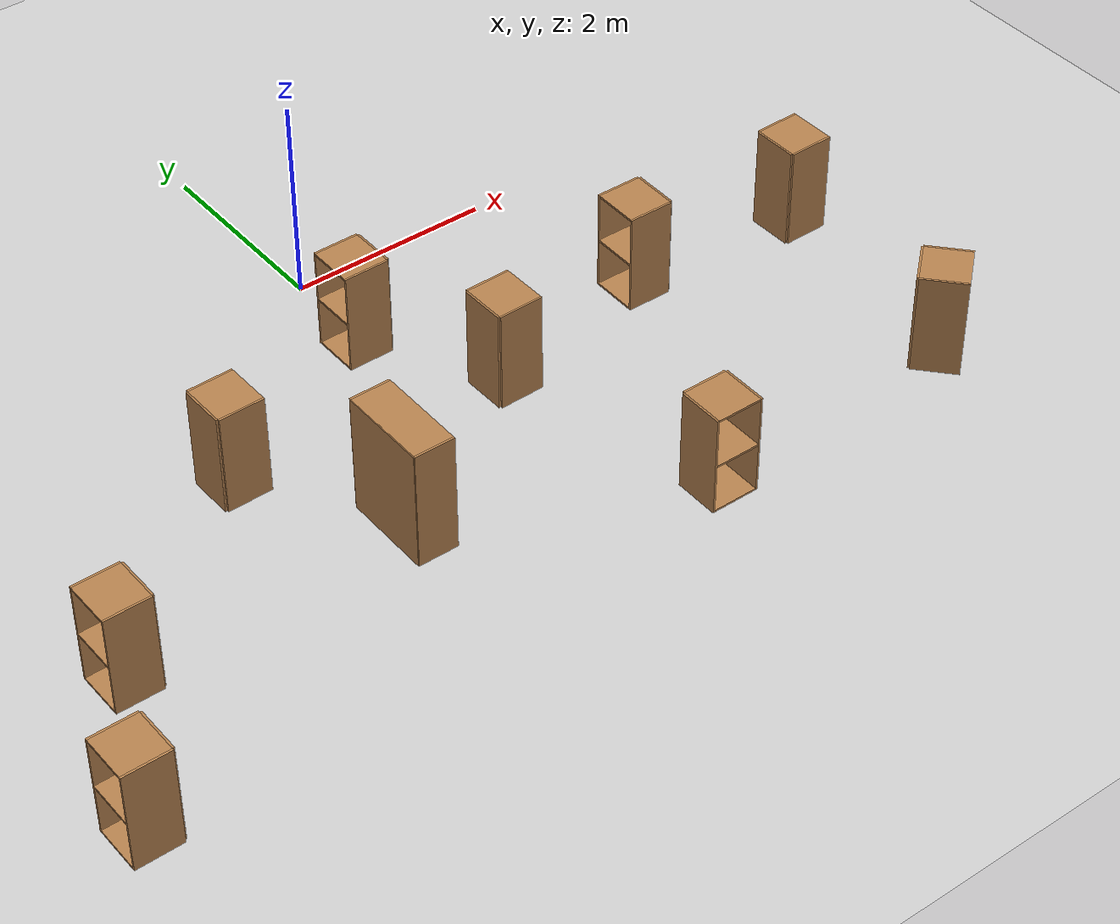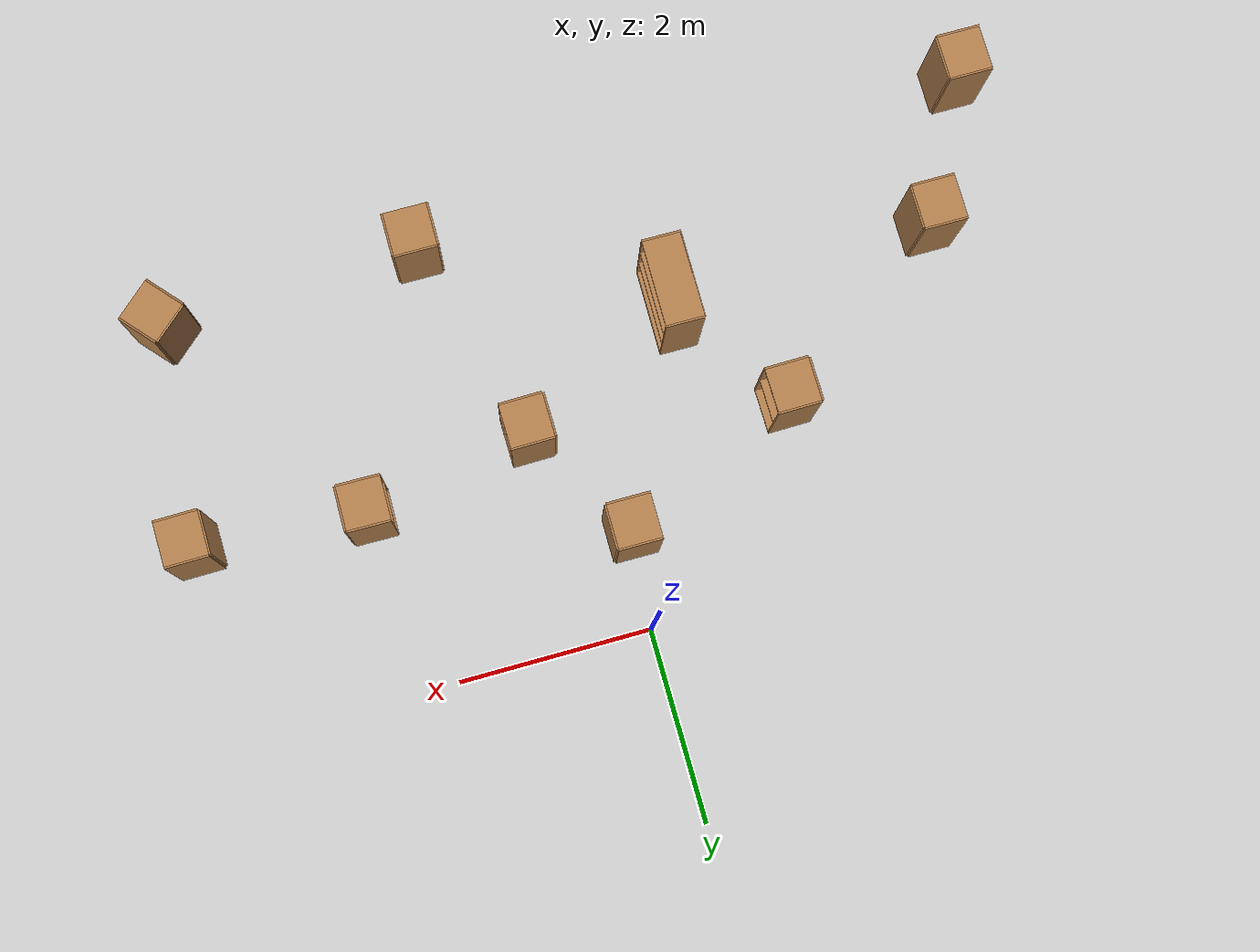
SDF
<sdf version="1.6">
 <world name="default">
  <model name="ground_plane">
   <static>1</static>
   <link name="link">
    <collision name="collision">
     <geometry><plane><normal>0 0 1</normal><size>100 100</size></plane></geometry>
     <surface><friction><ode><mu>100</mu><mu2>50</mu2></ode></friction></surface>
    </collision>
    <visual name="visual">
     <cast_shadows>0</cast_shadows>
     <geometry><plane><normal>0 0 1</normal><size>100 100</size></plane></geometry>
     <material>
      <script><uri>file://media/materials/scripts/gazebo.material</uri><name>Gazebo/Grey</name></script>
     </material>
    </visual>
   </link>
  </model>
  <model name="cabinet">
   <static>1</static>
   <link name="cabinet_bottom_plate">
    <inertial>
     <pose>0 0 -1 0 -0 0</pose>
     <inertia><ixx>2.05</ixx><ixy>0</ixy><ixz>0</ixz><iyy>2.05</iyy><iyz>0</iyz><izz>2.05</izz></inertia>
     <mass>25</mass>
    </inertial>
    <collision name="cabinet_bottom_plate_geom">
     <pose>0 0 0.01 0 -0 0</pose>
     <geometry><box><size>0.45 0.45 0.02</size></box></geometry>
    </collision>
    <visual name="cabinet_bottom_plate_geom_visual">
     <pose>0 0 0.01 0 -0 0</pose>
     <geometry><box><size>0.45 0.45 0.02</size></box></geometry>
     <material>
      <script><uri>file://media/materials/scripts/gazebo.material</uri><name>Gazebo/Wood</name></script>
     </material>
    </visual>
    <collision name="cabinet_bottom_plate_geom_cabinet_back_plate">
     <pose>0.235 0 0.51 0 -0 0</pose>
     <geometry><box><size>0.02 0.45 1.02</size></box></geometry>
    </collision>
    <visual name="cabinet_bottom_plate_geom_cabinet_back_plate_visual">
     <pose>0.235 0 0.51 0 -0 0</pose>
     <geometry><box><size>0.02 0.45 1.02</size></box></geometry>
     <material>
      <script><uri>file://media/materials/scripts/gazebo.material</uri><name>Gazebo/Wood</name></script>
     </material>
    </visual>
    <collision name="cabinet_bottom_plate_geom_cabinet_left_plate">
     <pose>0 0.235 0.51 0 -0 0</pose>
     <geometry><box><size>0.45 0.02 1.02</size></box></geometry>
    </collision>
    <visual name="cabinet_bottom_plate_geom_cabinet_left_plate_visual">
     <pose>0 0.235 0.51 0 -0 0</pose>
     <geometry><box><size>0.45 0.02 1.02</size></box></geometry>
     <material>
      <script><uri>file://media/materials/scripts/gazebo.material</uri><name>Gazebo/Wood</name></script>
     </material>
    </visual>
    <collision name="cabinet_bottom_plate_geom_cabinet_middle_plate">
     <pose>0 0 0.51 0 -0 0</pose>
     <geometry><box><size>0.45 0.45 0.02</size></box></geometry>
    </collision>
    <visual name="cabinet_bottom_plate_geom_cabinet_middle_plate_visual">
     <pose>0 0 0.51 0 -0 0</pose>
     <geometry><box><size>0.45 0.45 0.02</size></box></geometry>
     <material>
      <script><uri>file://media/materials/scripts/gazebo.material</uri><name>Gazebo/Wood</name></script>
     </material>
    </visual>
    <collision name="cabinet_bottom_plate_geom_cabinet_right_plate">
     <pose>0 -0.235 0.51 0 -0 0</pose>
     <geometry><box><size>0.45 0.02 1.02</size></box></geometry>
    </collision>
    <visual name="cabinet_bottom_plate_geom_cabinet_right_plate_visual">
     <pose>0 -0.235 0.51 0 -0 0</pose>
     <geometry><box><size>0.45 0.02 1.02</size></box></geometry>
     <material>
      <script><uri>file://media/materials/scripts/gazebo.material</uri><name>Gazebo/Wood</name></script>
     </material>
    </visual>
    <collision name="cabinet_bottom_plate_geom_cabinet_top_plate">
     <pose>0 0 1.01 0 -0 0</pose>
     <geometry><box><size>0.45 0.45 0.02</size></box></geometry>
    </collision>
    <visual name="cabinet_bottom_plate_geom_cabinet_top_plate_visual">
     <pose>0 0 1.01 0 -0 0</pose>
     <geometry><box><size>0.45 0.45 0.02</size></box></geometry>
     <material>
      <script><uri>file://media/materials/scripts/gazebo.material</uri><name>Gazebo/Wood</name></script>
     </material>
    </visual>
   </link>
   <pose>-4.59525 -4.71212 0 0 -0 0</pose>
  </model>
  <model name="bookshelf">
   <static>1</static>
   <link name="link">
    <inertial><mass>1</mass></inertial>
    <collision name="back">
     <pose>0 0.005 0.6 0 -0 0</pose>
     <geometry><box><size>0.9 0.01 1.2</size></box></geometry>
    </collision>
    <visual name="visual1">
     <pose>0 0.005 0.6 0 -0 0</pose>
     <geometry><box><size>0.9 0.01 1.2</size></box></geometry>
     <material>
      <script><uri>file://media/materials/scripts/gazebo.material</uri><name>Gazebo/Wood</name></script>
     </material>
    </visual>
    <collision name="left_side">
     <pose>0.45 -0.195 0.6 0 -0 0</pose>
     <geometry><box><size>0.02 0.4 1.2</size></box></geometry>
    </collision>
    <visual name="visual2">
     <pose>0.45 -0.195 0.6 0 -0 0</pose>
     <geometry><box><size>0.02 0.4 1.2</size></box></geometry>
     <material>
      <script><uri>file://media/materials/scripts/gazebo.material</uri><name>Gazebo/Wood</name></script>
     </material>
    </visual>
    <collision name="right_side">
     <pose>-0.45 -0.195 0.6 0 -0 0</pose>
     <geometry><box><size>0.02 0.4 1.2</size></box></geometry>
    </collision>
    <visual name="visual3">
     <pose>-0.45 -0.195 0.6 0 -0 0</pose>
     <geometry><box><size>0.02 0.4 1.2</size></box></geometry>
     <material>
      <script><uri>file://media/materials/scripts/gazebo.material</uri><name>Gazebo/Wood</name></script>
     </material>
    </visual>
    <collision name="bottom">
     <pose>0 -0.195 0.03 0 -0 0</pose>
     <geometry><box><size>0.88 0.4 0.06</size></box></geometry>
    </collision>
    <visual name="visual4">
     <pose>0 -0.195 0.03 0 -0 0</pose>
     <geometry><box><size>0.88 0.4 0.06</size></box></geometry>
     <material>
      <script><uri>file://media/materials/scripts/gazebo.material</uri><name>Gazebo/Wood</name></script>
     </material>
    </visual>
    <collision name="top">
     <pose>0 -0.195 1.19 0 -0 0</pose>
     <geometry><box><size>0.88 0.4 0.02</size></box></geometry>
    </collision>
    <visual name="visual5">
     <pose>0 -0.195 1.19 0 -0 0</pose>
     <geometry><box><size>0.88 0.4 0.02</size></box></geometry>
     <material>
      <script><uri>file://media/materials/scripts/gazebo.material</uri><name>Gazebo/Wood</name></script>
     </material>
    </visual>
    <collision name="low_shelf">
     <pose>0 -0.195 0.43 0 -0 0</pose>
     <geometry><box><size>0.88 0.4 0.02</size></box></geometry>
    </collision>
    <visual name="visual6">
     <pose>0 -0.195 0.43 0 -0 0</pose>
     <geometry><box><size>0.88 0.4 0.02</size></box></geometry>
     <material>
      <script><uri>file://media/materials/scripts/gazebo.material</uri><name>Gazebo/Wood</name></script>
     </material>
    </visual>
    <collision name="high_shelf">
     <pose>0 -0.195 0.8 0 -0 0</pose>
     <geometry><box><size>0.88 0.4 0.02</size></box></geometry>
    </collision>
    <visual name="visual7">
     <pose>0 -0.195 0.8 0 -0 0</pose>
     <geometry><box><size>0.88 0.4 0.02</size></box></geometry>
     <material>
      <script><uri>file://media/materials/scripts/gazebo.material</uri><name>Gazebo/Wood</name></script>
     </material>
    </visual>
   </link>
   <pose>-1.26733 -3.17587 0 0 -0 1.56537</pose>
  </model>
  <model name="cabinet_0">
   <static>1</static>
   <link name="cabinet_bottom_plate">
    <inertial>
     <pose>0 0 -1 0 -0 0</pose>
     <inertia><ixx>2.05</ixx><ixy>0</ixy><ixz>0</ixz><iyy>2.05</iyy><iyz>0</iyz><izz>2.05</izz></inertia>
     <mass>25</mass>
    </inertial>
    <collision name="cabinet_bottom_plate_geom">
     <pose>0 0 0.01 0 -0 0</pose>
     <geometry><box><size>0.45 0.45 0.02</size></box></geometry>
    </collision>
    <visual name="cabinet_bottom_plate_geom_visual">
     <pose>0 0 0.01 0 -0 0</pose>
     <geometry><box><size>0.45 0.45 0.02</size></box></geometry>
     <material>
      <script><uri>file://media/materials/scripts/gazebo.material</uri><name>Gazebo/Wood</name></script>
     </material>
    </visual>
    <collision name="cabinet_bottom_plate_geom_cabinet_back_plate">
     <pose>0.235 0 0.51 0 -0 0</pose>
     <geometry><box><size>0.02 0.45 1.02</size></box></geometry>
    </collision>
    <visual name="cabinet_bottom_plate_geom_cabinet_back_plate_visual">
     <pose>0.235 0 0.51 0 -0 0</pose>
     <geometry><box><size>0.02 0.45 1.02</size></box></geometry>
     <material>
      <script><uri>file://media/materials/scripts/gazebo.material</uri><name>Gazebo/Wood</name></script>
     </material>
    </visual>
    <collision name="cabinet_bottom_plate_geom_cabinet_left_plate">
     <pose>0 0.235 0.51 0 -0 0</pose>
     <geometry><box><size>0.45 0.02 1.02</size></box></geometry>
    </collision>
    <visual name="cabinet_bottom_plate_geom_cabinet_left_plate_visual">
     <pose>0 0.235 0.51 0 -0 0</pose>
     <geometry><box><size>0.45 0.02 1.02</size></box></geometry>
     <material>
      <script><uri>file://media/materials/scripts/gazebo.material</uri><name>Gazebo/Wood</name></script>
     </material>
    </visual>
    <collision name="cabinet_bottom_plate_geom_cabinet_middle_plate">
     <pose>0 0 0.51 0 -0 0</pose>
     <geometry><box><size>0.45 0.45 0.02</size></box></geometry>
    </collision>
    <visual name="cabinet_bottom_plate_geom_cabinet_middle_plate_visual">
     <pose>0 0 0.51 0 -0 0</pose>
     <geometry><box><size>0.45 0.45 0.02</size></box></geometry>
     <material>
      <script><uri>file://media/materials/scripts/gazebo.material</uri><name>Gazebo/Wood</name></script>
     </material>
    </visual>
    <collision name="cabinet_bottom_plate_geom_cabinet_right_plate">
     <pose>0 -0.235 0.51 0 -0 0</pose>
     <geometry><box><size>0.45 0.02 1.02</size></box></geometry>
    </collision>
    <visual name="cabinet_bottom_plate_geom_cabinet_right_plate_visual">
     <pose>0 -0.235 0.51 0 -0 0</pose>
     <geometry><box><size>0.45 0.02 1.02</size></box></geometry>
     <material>
      <script><uri>file://media/materials/scripts/gazebo.material</uri><name>Gazebo/Wood</name></script>
     </material>
    </visual>
    <collision name="cabinet_bottom_plate_geom_cabinet_top_plate">
     <pose>0 0 1.01 0 -0 0</pose>
     <geometry><box><size>0.45 0.45 0.02</size></box></geometry>
    </collision>
    <visual name="cabinet_bottom_plate_geom_cabinet_top_plate_visual">
     <pose>0 0 1.01 0 -0 0</pose>
     <geometry><box><size>0.45 0.45 0.02</size></box></geometry>
     <material>
      <script><uri>file://media/materials/scripts/gazebo.material</uri><name>Gazebo/Wood</name></script>
     </material>
    </visual>
   </link>
   <pose>-3.88363 -3.28029 0 0 -0 0</pose>
  </model>
  <model name="cabinet_0_clone">
   <static>1</static>
   <link name="cabinet_bottom_plate">
    <inertial>
     <pose>0 0 -1 0 -0 0</pose>
     <inertia><ixx>2.05</ixx><ixy>0</ixy><ixz>0</ixz><iyy>2.05</iyy><iyz>0</iyz><izz>2.05</izz></inertia>
     <mass>25</mass>
    </inertial>
    <collision name="cabinet_bottom_plate_geom">
     <pose>0 0 0.01 0 -0 0</pose>
     <geometry><box><size>0.45 0.45 0.02</size></box></geometry>
    </collision>
    <visual name="cabinet_bottom_plate_geom_visual">
     <pose>0 0 0.01 0 -0 0</pose>
     <geometry><box><size>0.45 0.45 0.02</size></box></geometry>
     <material>
      <script><uri>file://media/materials/scripts/gazebo.material</uri><name>Gazebo/Wood</name></script>
     </material>
    </visual>
    <collision name="cabinet_bottom_plate_geom_cabinet_back_plate">
     <pose>0.235 0 0.51 0 -0 0</pose>
     <geometry><box><size>0.02 0.45 1.02</size></box></geometry>
    </collision>
    <visual name="cabinet_bottom_plate_geom_cabinet_back_plate_visual">
     <pose>0.235 0 0.51 0 -0 0</pose>
     <geometry><box><size>0.02 0.45 1.02</size></box></geometry>
     <material>
      <script><uri>file://media/materials/scripts/gazebo.material</uri><name>Gazebo/Wood</name></script>
     </material>
    </visual>
    <collision name="cabinet_bottom_plate_geom_cabinet_left_plate">
     <pose>0 0.235 0.51 0 -0 0</pose>
     <geometry><box><size>0.45 0.02 1.02</size></box></geometry>
    </collision>
    <visual name="cabinet_bottom_plate_geom_cabinet_left_plate_visual">
     <pose>0 0.235 0.51 0 -0 0</pose>
     <geometry><box><size>0.45 0.02 1.02</size></box></geometry>
     <material>
      <script><uri>file://media/materials/scripts/gazebo.material</uri><name>Gazebo/Wood</name></script>
     </material>
    </visual>
    <collision name="cabinet_bottom_plate_geom_cabinet_middle_plate">
     <pose>0 0 0.51 0 -0 0</pose>
     <geometry><box><size>0.45 0.45 0.02</size></box></geometry>
    </collision>
    <visual name="cabinet_bottom_plate_geom_cabinet_middle_plate_visual">
     <pose>0 0 0.51 0 -0 0</pose>
     <geometry><box><size>0.45 0.45 0.02</size></box></geometry>
     <material>
      <script><uri>file://media/materials/scripts/gazebo.material</uri><name>Gazebo/Wood</name></script>
     </material>
    </visual>
    <collision name="cabinet_bottom_plate_geom_cabinet_right_plate">
     <pose>0 -0.235 0.51 0 -0 0</pose>
     <geometry><box><size>0.45 0.02 1.02</size></box></geometry>
    </collision>
    <visual name="cabinet_bottom_plate_geom_cabinet_right_plate_visual">
     <pose>0 -0.235 0.51 0 -0 0</pose>
     <geometry><box><size>0.45 0.02 1.02</size></box></geometry>
     <material>
      <script><uri>file://media/materials/scripts/gazebo.material</uri><name>Gazebo/Wood</name></script>
     </material>
    </visual>
    <collision name="cabinet_bottom_plate_geom_cabinet_top_plate">
     <pose>0 0 1.01 0 -0 0</pose>
     <geometry><box><size>0.45 0.45 0.02</size></box></geometry>
    </collision>
    <visual name="cabinet_bottom_plate_geom_cabinet_top_plate_visual">
     <pose>0 0 1.01 0 -0 0</pose>
     <geometry><box><size>0.45 0.45 0.02</size></box></geometry>
     <material>
      <script><uri>file://media/materials/scripts/gazebo.material</uri><name>Gazebo/Wood</name></script>
     </material>
    </visual>
   </link>
   <pose>-1.93662 -1.87082 0 0 0 -3.12805</pose>
  </model>
  <model name="cabinet_0_clone_clone_3">
   <static>1</static>
   <link name="cabinet_bottom_plate">
    <inertial>
     <pose>0 0 -1 0 -0 0</pose>
     <inertia><ixx>2.05</ixx><ixy>0</ixy><ixz>0</ixz><iyy>2.05</iyy><iyz>0</iyz><izz>2.05</izz></inertia>
     <mass>25</mass>
    </inertial>
    <collision name="cabinet_bottom_plate_geom">
     <pose>0 0 0.01 0 -0 0</pose>
     <geometry><box><size>0.45 0.45 0.02</size></box></geometry>
    </collision>
    <visual name="cabinet_bottom_plate_geom_visual">
     <pose>0 0 0.01 0 -0 0</pose>
     <geometry><box><size>0.45 0.45 0.02</size></box></geometry>
     <material>
      <script><uri>file://media/materials/scripts/gazebo.material</uri><name>Gazebo/Wood</name></script>
     </material>
    </visual>
    <collision name="cabinet_bottom_plate_geom_cabinet_back_plate">
     <pose>0.235 0 0.51 0 -0 0</pose>
     <geometry><box><size>0.02 0.45 1.02</size></box></geometry>
    </collision>
    <visual name="cabinet_bottom_plate_geom_cabinet_back_plate_visual">
     <pose>0.235 0 0.51 0 -0 0</pose>
     <geometry><box><size>0.02 0.45 1.02</size></box></geometry>
     <material>
      <script><uri>file://media/materials/scripts/gazebo.material</uri><name>Gazebo/Wood</name></script>
     </material>
    </visual>
    <collision name="cabinet_bottom_plate_geom_cabinet_left_plate">
     <pose>0 0.235 0.51 0 -0 0</pose>
     <geometry><box><size>0.45 0.02 1.02</size></box></geometry>
    </collision>
    <visual name="cabinet_bottom_plate_geom_cabinet_left_plate_visual">
     <pose>0 0.235 0.51 0 -0 0</pose>
     <geometry><box><size>0.45 0.02 1.02</size></box></geometry>
     <material>
      <script><uri>file://media/materials/scripts/gazebo.material</uri><name>Gazebo/Wood</name></script>
     </material>
    </visual>
    <collision name="cabinet_bottom_plate_geom_cabinet_middle_plate">
     <pose>0 0 0.51 0 -0 0</pose>
     <geometry><box><size>0.45 0.45 0.02</size></box></geometry>
    </collision>
    <visual name="cabinet_bottom_plate_geom_cabinet_middle_plate_visual">
     <pose>0 0 0.51 0 -0 0</pose>
     <geometry><box><size>0.45 0.45 0.02</size></box></geometry>
     <material>
      <script><uri>file://media/materials/scripts/gazebo.material</uri><name>Gazebo/Wood</name></script>
     </material>
    </visual>
    <collision name="cabinet_bottom_plate_geom_cabinet_right_plate">
     <pose>0 -0.235 0.51 0 -0 0</pose>
     <geometry><box><size>0.45 0.02 1.02</size></box></geometry>
    </collision>
    <visual name="cabinet_bottom_plate_geom_cabinet_right_plate_visual">
     <pose>0 -0.235 0.51 0 -0 0</pose>
     <geometry><box><size>0.45 0.02 1.02</size></box></geometry>
     <material>
      <script><uri>file://media/materials/scripts/gazebo.material</uri><name>Gazebo/Wood</name></script>
     </material>
    </visual>
    <collision name="cabinet_bottom_plate_geom_cabinet_top_plate">
     <pose>0 0 1.01 0 -0 0</pose>
     <geometry><box><size>0.45 0.45 0.02</size></box></geometry>
    </collision>
    <visual name="cabinet_bottom_plate_geom_cabinet_top_plate_visual">
     <pose>0 0 1.01 0 -0 0</pose>
     <geometry><box><size>0.45 0.45 0.02</size></box></geometry>
     <material>
      <script><uri>file://media/materials/scripts/gazebo.material</uri><name>Gazebo/Wood</name></script>
     </material>
    </visual>
   </link>
   <pose>-0.065749 -0.988475 0 0 0 -0.000499</pose>
  </model>
  <model name="cabinet_0_clone_clone_4">
   <static>1</static>
   <link name="cabinet_bottom_plate">
    <inertial>
     <pose>0 0 -1 0 -0 0</pose>
     <inertia><ixx>2.05</ixx><ixy>0</ixy><ixz>0</ixz><iyy>2.05</iyy><iyz>0</iyz><izz>2.05</izz></inertia>
     <mass>25</mass>
    </inertial>
    <collision name="cabinet_bottom_plate_geom">
     <pose>0 0 0.01 0 -0 0</pose>
     <geometry><box><size>0.45 0.45 0.02</size></box></geometry>
    </collision>
    <visual name="cabinet_bottom_plate_geom_visual">
     <pose>0 0 0.01 0 -0 0</pose>
     <geometry><box><size>0.45 0.45 0.02</size></box></geometry>
     <material>
      <script><uri>file://media/materials/scripts/gazebo.material</uri><name>Gazebo/Wood</name></script>
     </material>
    </visual>
    <collision name="cabinet_bottom_plate_geom_cabinet_back_plate">
     <pose>0.235 0 0.51 0 -0 0</pose>
     <geometry><box><size>0.02 0.45 1.02</size></box></geometry>
    </collision>
    <visual name="cabinet_bottom_plate_geom_cabinet_back_plate_visual">
     <pose>0.235 0 0.51 0 -0 0</pose>
     <geometry><box><size>0.02 0.45 1.02</size></box></geometry>
     <material>
      <script><uri>file://media/materials/scripts/gazebo.material</uri><name>Gazebo/Wood</name></script>
     </material>
    </visual>
    <collision name="cabinet_bottom_plate_geom_cabinet_left_plate">
     <pose>0 0.235 0.51 0 -0 0</pose>
     <geometry><box><size>0.45 0.02 1.02</size></box></geometry>
    </collision>
    <visual name="cabinet_bottom_plate_geom_cabinet_left_plate_visual">
     <pose>0 0.235 0.51 0 -0 0</pose>
     <geometry><box><size>0.45 0.02 1.02</size></box></geometry>
     <material>
      <script><uri>file://media/materials/scripts/gazebo.material</uri><name>Gazebo/Wood</name></script>
     </material>
    </visual>
    <collision name="cabinet_bottom_plate_geom_cabinet_middle_plate">
     <pose>0 0 0.51 0 -0 0</pose>
     <geometry><box><size>0.45 0.45 0.02</size></box></geometry>
    </collision>
    <visual name="cabinet_bottom_plate_geom_cabinet_middle_plate_visual">
     <pose>0 0 0.51 0 -0 0</pose>
     <geometry><box><size>0.45 0.45 0.02</size></box></geometry>
     <material>
      <script><uri>file://media/materials/scripts/gazebo.material</uri><name>Gazebo/Wood</name></script>
     </material>
    </visual>
    <collision name="cabinet_bottom_plate_geom_cabinet_right_plate">
     <pose>0 -0.235 0.51 0 -0 0</pose>
     <geometry><box><size>0.45 0.02 1.02</size></box></geometry>
    </collision>
    <visual name="cabinet_bottom_plate_geom_cabinet_right_plate_visual">
     <pose>0 -0.235 0.51 0 -0 0</pose>
     <geometry><box><size>0.45 0.02 1.02</size></box></geometry>
     <material>
      <script><uri>file://media/materials/scripts/gazebo.material</uri><name>Gazebo/Wood</name></script>
     </material>
    </visual>
    <collision name="cabinet_bottom_plate_geom_cabinet_top_plate">
     <pose>0 0 1.01 0 -0 0</pose>
     <geometry><box><size>0.45 0.45 0.02</size></box></geometry>
    </collision>
    <visual name="cabinet_bottom_plate_geom_cabinet_top_plate_visual">
     <pose>0 0 1.01 0 -0 0</pose>
     <geometry><box><size>0.45 0.45 0.02</size></box></geometry>
     <material>
      <script><uri>file://media/materials/scripts/gazebo.material</uri><name>Gazebo/Wood</name></script>
     </material>
    </visual>
   </link>
   <pose>0.68401 -2.22176 0 0 0 -3.12805</pose>
  </model>
  <model name="cabinet_0_clone_clone_9">
   <static>1</static>
   <link name="cabinet_bottom_plate">
    <inertial>
     <pose>0 0 -1 0 -0 0</pose>
     <inertia><ixx>2.05</ixx><ixy>0</ixy><ixz>0</ixz><iyy>2.05</iyy><iyz>0</iyz><izz>2.05</izz></inertia>
     <mass>25</mass>
    </inertial>
    <collision name="cabinet_bottom_plate_geom">
     <pose>0 0 0.01 0 -0 0</pose>
     <geometry><box><size>0.45 0.45 0.02</size></box></geometry>
    </collision>
    <visual name="cabinet_bottom_plate_geom_visual">
     <pose>0 0 0.01 0 -0 0</pose>
     <geometry><box><size>0.45 0.45 0.02</size></box></geometry>
     <material>
      <script><uri>file://media/materials/scripts/gazebo.material</uri><name>Gazebo/Wood</name></script>
     </material>
    </visual>
    <collision name="cabinet_bottom_plate_geom_cabinet_back_plate">
     <pose>0.235 0 0.51 0 -0 0</pose>
     <geometry><box><size>0.02 0.45 1.02</size></box></geometry>
    </collision>
    <visual name="cabinet_bottom_plate_geom_cabinet_back_plate_visual">
     <pose>0.235 0 0.51 0 -0 0</pose>
     <geometry><box><size>0.02 0.45 1.02</size></box></geometry>
     <material>
      <script><uri>file://media/materials/scripts/gazebo.material</uri><name>Gazebo/Wood</name></script>
     </material>
    </visual>
    <collision name="cabinet_bottom_plate_geom_cabinet_left_plate">
     <pose>0 0.235 0.51 0 -0 0</pose>
     <geometry><box><size>0.45 0.02 1.02</size></box></geometry>
    </collision>
    <visual name="cabinet_bottom_plate_geom_cabinet_left_plate_visual">
     <pose>0 0.235 0.51 0 -0 0</pose>
     <geometry><box><size>0.45 0.02 1.02</size></box></geometry>
     <material>
      <script><uri>file://media/materials/scripts/gazebo.material</uri><name>Gazebo/Wood</name></script>
     </material>
    </visual>
    <collision name="cabinet_bottom_plate_geom_cabinet_middle_plate">
     <pose>0 0 0.51 0 -0 0</pose>
     <geometry><box><size>0.45 0.45 0.02</size></box></geometry>
    </collision>
    <visual name="cabinet_bottom_plate_geom_cabinet_middle_plate_visual">
     <pose>0 0 0.51 0 -0 0</pose>
     <geometry><box><size>0.45 0.45 0.02</size></box></geometry>
     <material>
      <script><uri>file://media/materials/scripts/gazebo.material</uri><name>Gazebo/Wood</name></script>
     </material>
    </visual>
    <collision name="cabinet_bottom_plate_geom_cabinet_right_plate">
     <pose>0 -0.235 0.51 0 -0 0</pose>
     <geometry><box><size>0.45 0.02 1.02</size></box></geometry>
    </collision>
    <visual name="cabinet_bottom_plate_geom_cabinet_right_plate_visual">
     <pose>0 -0.235 0.51 0 -0 0</pose>
     <geometry><box><size>0.45 0.02 1.02</size></box></geometry>
     <material>
      <script><uri>file://media/materials/scripts/gazebo.material</uri><name>Gazebo/Wood</name></script>
     </material>
    </visual>
    <collision name="cabinet_bottom_plate_geom_cabinet_top_plate">
     <pose>0 0 1.01 0 -0 0</pose>
     <geometry><box><size>0.45 0.45 0.02</size></box></geometry>
    </collision>
    <visual name="cabinet_bottom_plate_geom_cabinet_top_plate_visual">
     <pose>0 0 1.01 0 -0 0</pose>
     <geometry><box><size>0.45 0.45 0.02</size></box></geometry>
     <material>
      <script><uri>file://media/materials/scripts/gazebo.material</uri><name>Gazebo/Wood</name></script>
     </material>
    </visual>
   </link>
   <pose>2.43085 -1.85747 0 0 0 -0.011598</pose>
  </model>
  <model name="cabinet_0_clone_clone_10">
   <static>1</static>
   <link name="cabinet_bottom_plate">
    <inertial>
     <pose>0 0 -1 0 -0 0</pose>
     <inertia><ixx>2.05</ixx><ixy>0</ixy><ixz>0</ixz><iyy>2.05</iyy><iyz>0</iyz><izz>2.05</izz></inertia>
     <mass>25</mass>
    </inertial>
    <collision name="cabinet_bottom_plate_geom">
     <pose>0 0 0.01 0 -0 0</pose>
     <geometry><box><size>0.45 0.45 0.02</size></box></geometry>
    </collision>
    <visual name="cabinet_bottom_plate_geom_visual">
     <pose>0 0 0.01 0 -0 0</pose>
     <geometry><box><size>0.45 0.45 0.02</size></box></geometry>
     <material>
      <script><uri>file://media/materials/scripts/gazebo.material</uri><name>Gazebo/Wood</name></script>
     </material>
    </visual>
    <collision name="cabinet_bottom_plate_geom_cabinet_back_plate">
     <pose>0.235 0 0.51 0 -0 0</pose>
     <geometry><box><size>0.02 0.45 1.02</size></box></geometry>
    </collision>
    <visual name="cabinet_bottom_plate_geom_cabinet_back_plate_visual">
     <pose>0.235 0 0.51 0 -0 0</pose>
     <geometry><box><size>0.02 0.45 1.02</size></box></geometry>
     <material>
      <script><uri>file://media/materials/scripts/gazebo.material</uri><name>Gazebo/Wood</name></script>
     </material>
    </visual>
    <collision name="cabinet_bottom_plate_geom_cabinet_left_plate">
     <pose>0 0.235 0.51 0 -0 0</pose>
     <geometry><box><size>0.45 0.02 1.02</size></box></geometry>
    </collision>
    <visual name="cabinet_bottom_plate_geom_cabinet_left_plate_visual">
     <pose>0 0.235 0.51 0 -0 0</pose>
     <geometry><box><size>0.45 0.02 1.02</size></box></geometry>
     <material>
      <script><uri>file://media/materials/scripts/gazebo.material</uri><name>Gazebo/Wood</name></script>
     </material>
    </visual>
    <collision name="cabinet_bottom_plate_geom_cabinet_middle_plate">
     <pose>0 0 0.51 0 -0 0</pose>
     <geometry><box><size>0.45 0.45 0.02</size></box></geometry>
    </collision>
    <visual name="cabinet_bottom_plate_geom_cabinet_middle_plate_visual">
     <pose>0 0 0.51 0 -0 0</pose>
     <geometry><box><size>0.45 0.45 0.02</size></box></geometry>
     <material>
      <script><uri>file://media/materials/scripts/gazebo.material</uri><name>Gazebo/Wood</name></script>
     </material>
    </visual>
    <collision name="cabinet_bottom_plate_geom_cabinet_right_plate">
     <pose>0 -0.235 0.51 0 -0 0</pose>
     <geometry><box><size>0.45 0.02 1.02</size></box></geometry>
    </collision>
    <visual name="cabinet_bottom_plate_geom_cabinet_right_plate_visual">
     <pose>0 -0.235 0.51 0 -0 0</pose>
     <geometry><box><size>0.45 0.02 1.02</size></box></geometry>
     <material>
      <script><uri>file://media/materials/scripts/gazebo.material</uri><name>Gazebo/Wood</name></script>
     </material>
    </visual>
    <collision name="cabinet_bottom_plate_geom_cabinet_top_plate">
     <pose>0 0 1.01 0 -0 0</pose>
     <geometry><box><size>0.45 0.45 0.02</size></box></geometry>
    </collision>
    <visual name="cabinet_bottom_plate_geom_cabinet_top_plate_visual">
     <pose>0 0 1.01 0 -0 0</pose>
     <geometry><box><size>0.45 0.45 0.02</size></box></geometry>
     <material>
      <script><uri>file://media/materials/scripts/gazebo.material</uri><name>Gazebo/Wood</name></script>
     </material>
    </visual>
   </link>
   <pose>4.22069 -1.98907 0 0 0 -3.12805</pose>
  </model>
  <model name="cabinet_0_clone_clone_11">
   <static>1</static>
   <link name="cabinet_bottom_plate">
    <inertial>
     <pose>0 0 -1 0 -0 0</pose>
     <inertia><ixx>2.05</ixx><ixy>0</ixy><ixz>0</ixz><iyy>2.05</iyy><iyz>0</iyz><izz>2.05</izz></inertia>
     <mass>25</mass>
    </inertial>
    <collision name="cabinet_bottom_plate_geom">
     <pose>0 0 0.01 0 -0 0</pose>
     <geometry><box><size>0.45 0.45 0.02</size></box></geometry>
    </collision>
    <visual name="cabinet_bottom_plate_geom_visual">
     <pose>0 0 0.01 0 -0 0</pose>
     <geometry><box><size>0.45 0.45 0.02</size></box></geometry>
     <material>
      <script><uri>file://media/materials/scripts/gazebo.material</uri><name>Gazebo/Wood</name></script>
     </material>
    </visual>
    <collision name="cabinet_bottom_plate_geom_cabinet_back_plate">
     <pose>0.235 0 0.51 0 -0 0</pose>
     <geometry><box><size>0.02 0.45 1.02</size></box></geometry>
    </collision>
    <visual name="cabinet_bottom_plate_geom_cabinet_back_plate_visual">
     <pose>0.235 0 0.51 0 -0 0</pose>
     <geometry><box><size>0.02 0.45 1.02</size></box></geometry>
     <material>
      <script><uri>file://media/materials/scripts/gazebo.material</uri><name>Gazebo/Wood</name></script>
     </material>
    </visual>
    <collision name="cabinet_bottom_plate_geom_cabinet_left_plate">
     <pose>0 0.235 0.51 0 -0 0</pose>
     <geometry><box><size>0.45 0.02 1.02</size></box></geometry>
    </collision>
    <visual name="cabinet_bottom_plate_geom_cabinet_left_plate_visual">
     <pose>0 0.235 0.51 0 -0 0</pose>
     <geometry><box><size>0.45 0.02 1.02</size></box></geometry>
     <material>
      <script><uri>file://media/materials/scripts/gazebo.material</uri><name>Gazebo/Wood</name></script>
     </material>
    </visual>
    <collision name="cabinet_bottom_plate_geom_cabinet_middle_plate">
     <pose>0 0 0.51 0 -0 0</pose>
     <geometry><box><size>0.45 0.45 0.02</size></box></geometry>
    </collision>
    <visual name="cabinet_bottom_plate_geom_cabinet_middle_plate_visual">
     <pose>0 0 0.51 0 -0 0</pose>
     <geometry><box><size>0.45 0.45 0.02</size></box></geometry>
     <material>
      <script><uri>file://media/materials/scripts/gazebo.material</uri><name>Gazebo/Wood</name></script>
     </material>
    </visual>
    <collision name="cabinet_bottom_plate_geom_cabinet_right_plate">
     <pose>0 -0.235 0.51 0 -0 0</pose>
     <geometry><box><size>0.45 0.02 1.02</size></box></geometry>
    </collision>
    <visual name="cabinet_bottom_plate_geom_cabinet_right_plate_visual">
     <pose>0 -0.235 0.51 0 -0 0</pose>
     <geometry><box><size>0.45 0.02 1.02</size></box></geometry>
     <material>
      <script><uri>file://media/materials/scripts/gazebo.material</uri><name>Gazebo/Wood</name></script>
     </material>
    </visual>
    <collision name="cabinet_bottom_plate_geom_cabinet_top_plate">
     <pose>0 0 1.01 0 -0 0</pose>
     <geometry><box><size>0.45 0.45 0.02</size></box></geometry>
    </collision>
    <visual name="cabinet_bottom_plate_geom_cabinet_top_plate_visual">
     <pose>0 0 1.01 0 -0 0</pose>
     <geometry><box><size>0.45 0.45 0.02</size></box></geometry>
     <material>
      <script><uri>file://media/materials/scripts/gazebo.material</uri><name>Gazebo/Wood</name></script>
     </material>
    </visual>
   </link>
   <pose>1.29562 -4.40805 0 0 -0 1.568</pose>
  </model>
  <model name="cabinet_0_clone_clone_12">
   <static>1</static>
   <link name="cabinet_bottom_plate">
    <inertial>
     <pose>0 0 -1 0 -0 0</pose>
     <inertia><ixx>2.05</ixx><ixy>0</ixy><ixz>0</ixz><iyy>2.05</iyy><iyz>0</iyz><izz>2.05</izz></inertia>
     <mass>25</mass>
    </inertial>
    <collision name="cabinet_bottom_plate_geom">
     <pose>0 0 0.01 0 -0 0</pose>
     <geometry><box><size>0.45 0.45 0.02</size></box></geometry>
    </collision>
    <visual name="cabinet_bottom_plate_geom_visual">
     <pose>0 0 0.01 0 -0 0</pose>
     <geometry><box><size>0.45 0.45 0.02</size></box></geometry>
     <material>
      <script><uri>file://media/materials/scripts/gazebo.material</uri><name>Gazebo/Wood</name></script>
     </material>
    </visual>
    <collision name="cabinet_bottom_plate_geom_cabinet_back_plate">
     <pose>0.235 0 0.51 0 -0 0</pose>
     <geometry><box><size>0.02 0.45 1.02</size></box></geometry>
    </collision>
    <visual name="cabinet_bottom_plate_geom_cabinet_back_plate_visual">
     <pose>0.235 0 0.51 0 -0 0</pose>
     <geometry><box><size>0.02 0.45 1.02</size></box></geometry>
     <material>
      <script><uri>file://media/materials/scripts/gazebo.material</uri><name>Gazebo/Wood</name></script>
     </material>
    </visual>
    <collision name="cabinet_bottom_plate_geom_cabinet_left_plate">
     <pose>0 0.235 0.51 0 -0 0</pose>
     <geometry><box><size>0.45 0.02 1.02</size></box></geometry>
    </collision>
    <visual name="cabinet_bottom_plate_geom_cabinet_left_plate_visual">
     <pose>0 0.235 0.51 0 -0 0</pose>
     <geometry><box><size>0.45 0.02 1.02</size></box></geometry>
     <material>
      <script><uri>file://media/materials/scripts/gazebo.material</uri><name>Gazebo/Wood</name></script>
     </material>
    </visual>
    <collision name="cabinet_bottom_plate_geom_cabinet_middle_plate">
     <pose>0 0 0.51 0 -0 0</pose>
     <geometry><box><size>0.45 0.45 0.02</size></box></geometry>
    </collision>
    <visual name="cabinet_bottom_plate_geom_cabinet_middle_plate_visual">
     <pose>0 0 0.51 0 -0 0</pose>
     <geometry><box><size>0.45 0.45 0.02</size></box></geometry>
     <material>
      <script><uri>file://media/materials/scripts/gazebo.material</uri><name>Gazebo/Wood</name></script>
     </material>
    </visual>
    <collision name="cabinet_bottom_plate_geom_cabinet_right_plate">
     <pose>0 -0.235 0.51 0 -0 0</pose>
     <geometry><box><size>0.45 0.02 1.02</size></box></geometry>
    </collision>
    <visual name="cabinet_bottom_plate_geom_cabinet_right_plate_visual">
     <pose>0 -0.235 0.51 0 -0 0</pose>
     <geometry><box><size>0.45 0.02 1.02</size></box></geometry>
     <material>
      <script><uri>file://media/materials/scripts/gazebo.material</uri><name>Gazebo/Wood</name></script>
     </material>
    </visual>
    <collision name="cabinet_bottom_plate_geom_cabinet_top_plate">
     <pose>0 0 1.01 0 -0 0</pose>
     <geometry><box><size>0.45 0.45 0.02</size></box></geometry>
    </collision>
    <visual name="cabinet_bottom_plate_geom_cabinet_top_plate_visual">
     <pose>0 0 1.01 0 -0 0</pose>
     <geometry><box><size>0.45 0.45 0.02</size></box></geometry>
     <material>
      <script><uri>file://media/materials/scripts/gazebo.material</uri><name>Gazebo/Wood</name></script>
     </material>
    </visual>
   </link>
   <pose>3.97649 -4.2753 0 0 -0 2.29696</pose>
  </model>
 </world>
</sdf>
